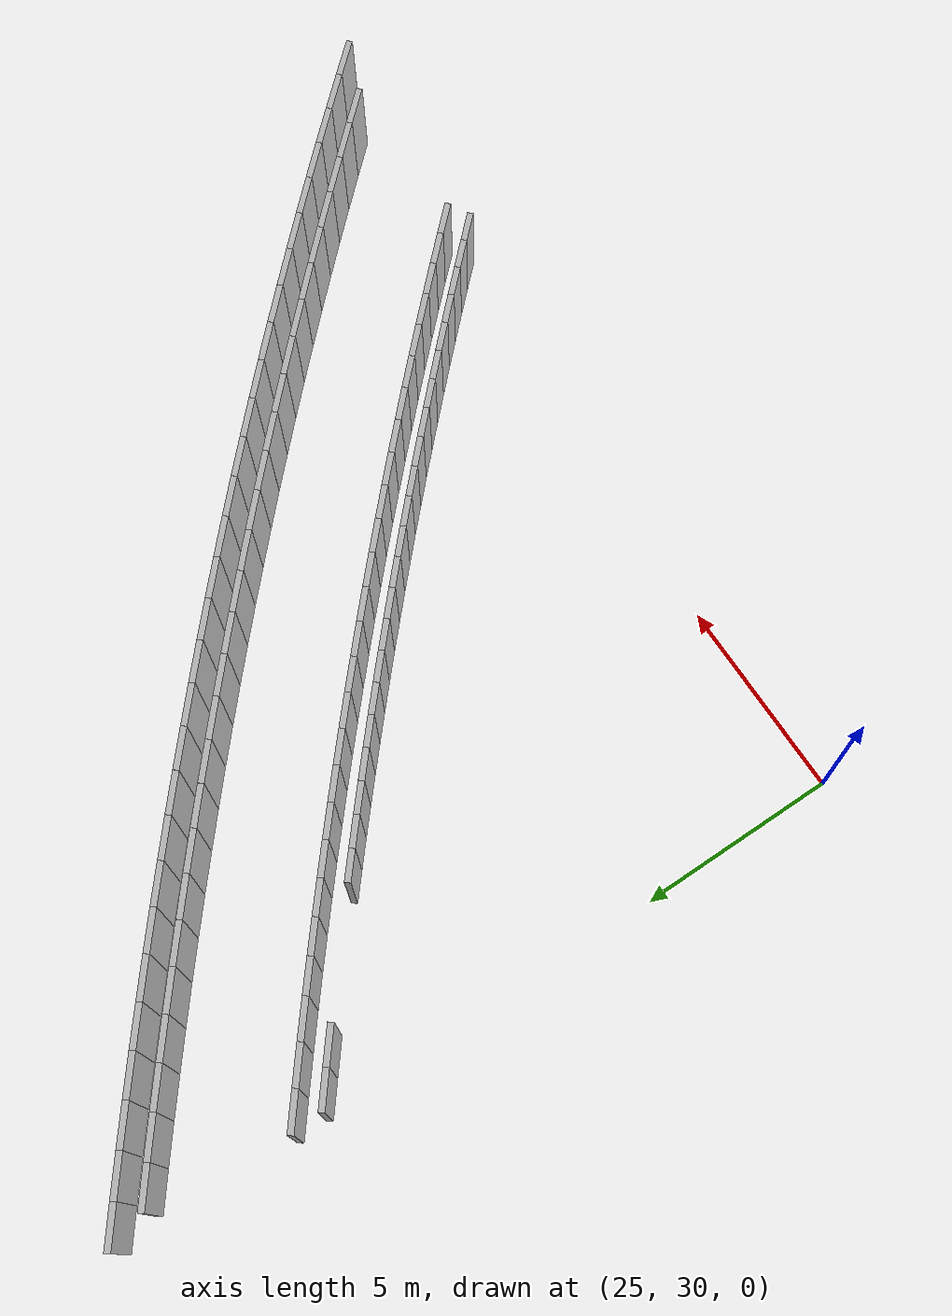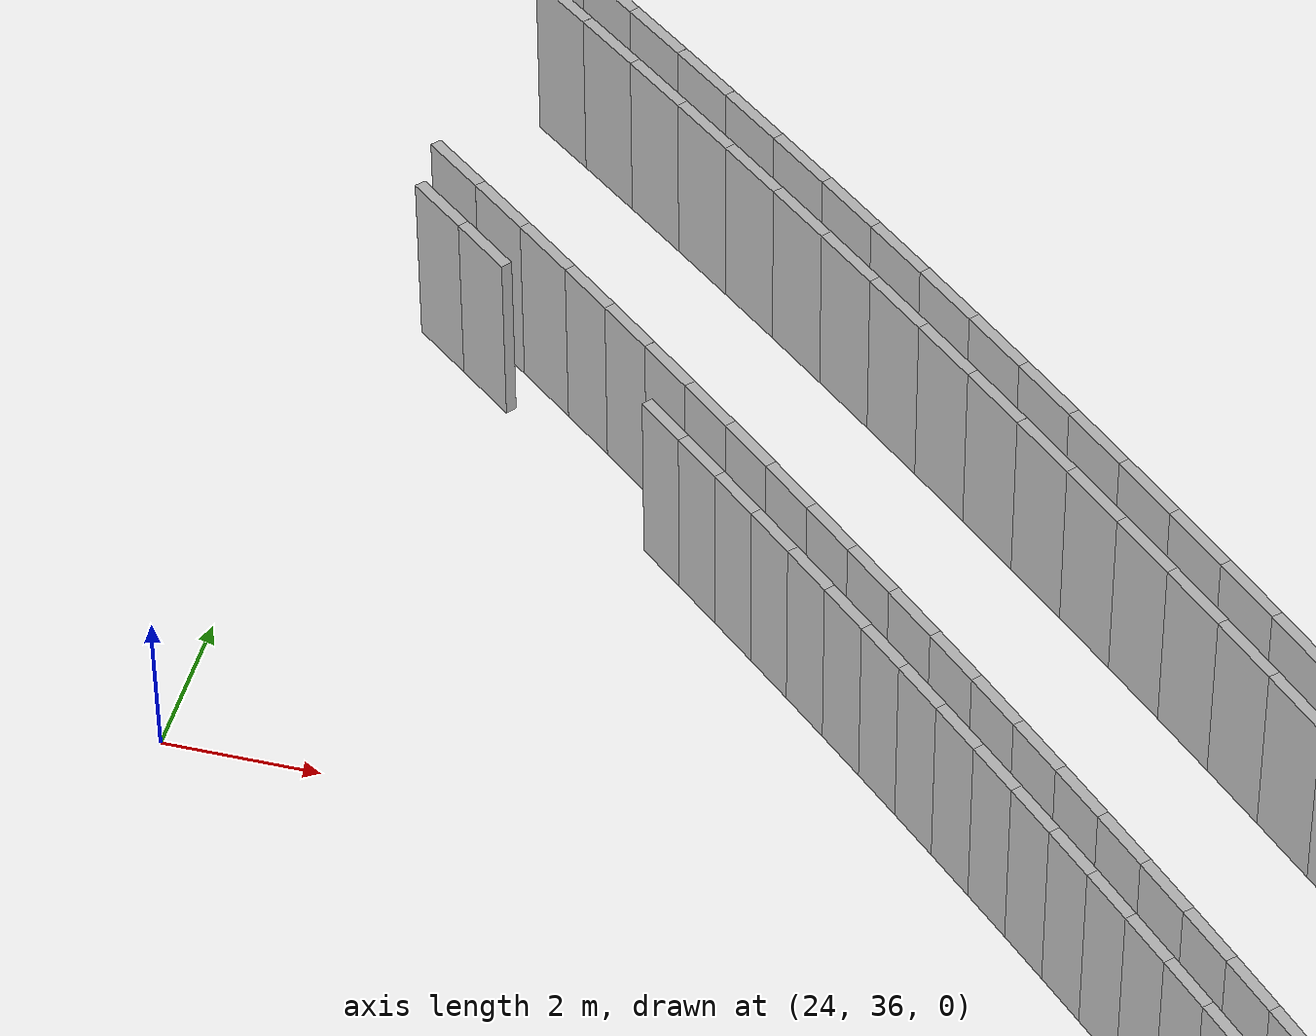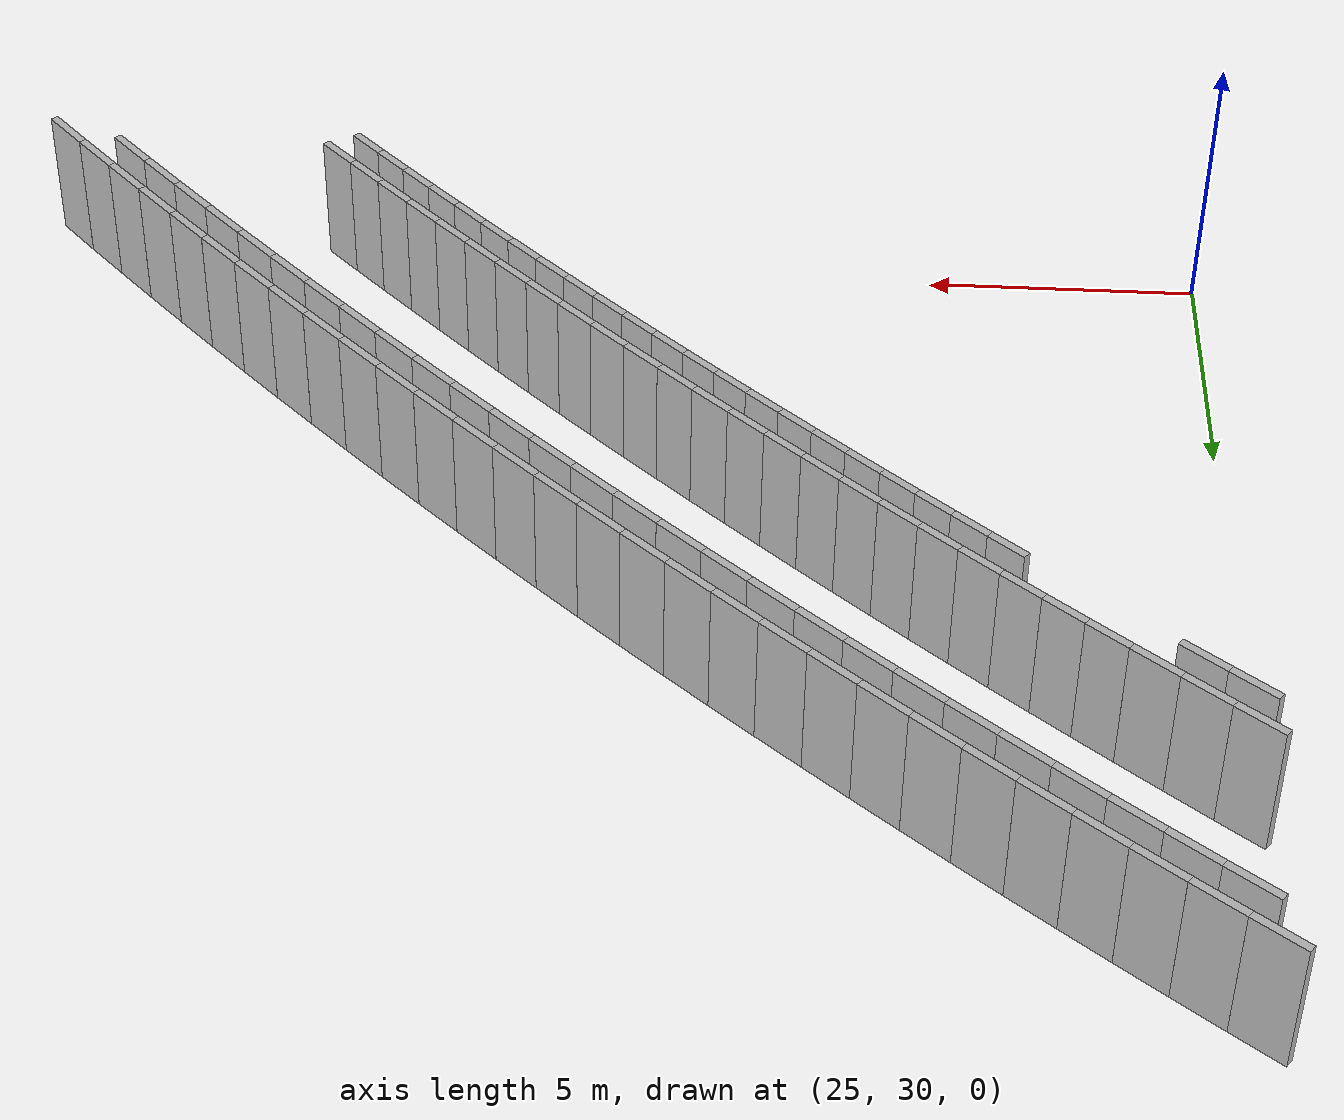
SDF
<sdf version="1.6">
 <model name="sps_0605">
  <static>1</static>
  <allow_auto_disable>0</allow_auto_disable>
  <link name="Wall7094">
   <collision name="collision"><geometry><box><size>1.02017 0.15 2.5</size></box></geometry></collision>
   <visual name="visual">
    <geometry><box><size>1.02017 0.15 2.5</size></box></geometry>
    <transparency>0.0</transparency>
   </visual>
   <pose>46.5691 29.3416 1.25 0 -0 2.31417</pose>
  </link>
  <link name="Wall7095">
   <collision name="collision"><geometry><box><size>1.02013 0.15 2.5</size></box></geometry></collision>
   <visual name="visual">
    <geometry><box><size>1.02013 0.15 2.5</size></box></geometry>
    <transparency>0.0</transparency>
   </visual>
   <pose>45.8762 30.0904 1.25 0 -0 2.32056</pose>
  </link>
  <link name="Wall7096">
   <collision name="collision"><geometry><box><size>1.02019 0.15 2.5</size></box></geometry></collision>
   <visual name="visual">
    <geometry><box><size>1.02019 0.15 2.5</size></box></geometry>
    <transparency>0.0</transparency>
   </visual>
   <pose>45.1788 30.8349 1.25 0 -0 2.32666</pose>
  </link>
  <link name="Wall7097">
   <collision name="collision"><geometry><box><size>1.0201 0.15 2.5</size></box></geometry></collision>
   <visual name="visual">
    <geometry><box><size>1.0201 0.15 2.5</size></box></geometry>
    <transparency>0.0</transparency>
   </visual>
   <pose>44.4766 31.5749 1.25 0 -0 2.33335</pose>
  </link>
  <link name="Wall7098">
   <collision name="collision"><geometry><box><size>1.02006 0.15 2.5</size></box></geometry></collision>
   <visual name="visual">
    <geometry><box><size>1.02006 0.15 2.5</size></box></geometry>
    <transparency>0.0</transparency>
   </visual>
   <pose>43.7697 32.3104 1.25 0 -0 2.33927</pose>
  </link>
  <link name="Wall7099">
   <collision name="collision"><geometry><box><size>1.02015 0.15 2.5</size></box></geometry></collision>
   <visual name="visual">
    <geometry><box><size>1.02015 0.15 2.5</size></box></geometry>
    <transparency>0.0</transparency>
   </visual>
   <pose>43.0583 33.0415 1.25 0 -0 2.34579</pose>
  </link>
  <link name="Wall7100">
   <collision name="collision"><geometry><box><size>1.02006 0.15 2.5</size></box></geometry></collision>
   <visual name="visual">
    <geometry><box><size>1.02006 0.15 2.5</size></box></geometry>
    <transparency>0.0</transparency>
   </visual>
   <pose>42.3422 33.768 1.25 0 -0 2.35218</pose>
  </link>
  <link name="Wall7101">
   <collision name="collision"><geometry><box><size>1.02005 0.15 2.5</size></box></geometry></collision>
   <visual name="visual">
    <geometry><box><size>1.02005 0.15 2.5</size></box></geometry>
    <transparency>0.0</transparency>
   </visual>
   <pose>41.6217 34.49 1.25 0 -0 2.35827</pose>
  </link>
  <link name="Wall7102">
   <collision name="collision"><geometry><box><size>1.02013 0.15 2.5</size></box></geometry></collision>
   <visual name="visual">
    <geometry><box><size>1.02013 0.15 2.5</size></box></geometry>
    <transparency>0.0</transparency>
   </visual>
   <pose>40.8966 35.2075 1.25 0 -0 2.36466</pose>
  </link>
  <link name="Wall7103">
   <collision name="collision"><geometry><box><size>1.0202 0.15 2.5</size></box></geometry></collision>
   <visual name="visual">
    <geometry><box><size>1.0202 0.15 2.5</size></box></geometry>
    <transparency>0.0</transparency>
   </visual>
   <pose>40.1669 35.9204 1.25 0 -0 2.371</pose>
  </link>
  <link name="Wall7104">
   <collision name="collision"><geometry><box><size>1.02015 0.15 2.5</size></box></geometry></collision>
   <visual name="visual">
    <geometry><box><size>1.02015 0.15 2.5</size></box></geometry>
    <transparency>0.0</transparency>
   </visual>
   <pose>39.4327 36.6287 1.25 0 -0 2.37726</pose>
  </link>
  <link name="Wall7105">
   <collision name="collision"><geometry><box><size>1.02005 0.15 2.5</size></box></geometry></collision>
   <visual name="visual">
    <geometry><box><size>1.02005 0.15 2.5</size></box></geometry>
    <transparency>0.0</transparency>
   </visual>
   <pose>38.6941 37.3323 1.25 0 -0 2.3837</pose>
  </link>
  <link name="Wall7106">
   <collision name="collision"><geometry><box><size>1.0202 0.15 2.5</size></box></geometry></collision>
   <visual name="visual">
    <geometry><box><size>1.0202 0.15 2.5</size></box></geometry>
    <transparency>0.0</transparency>
   </visual>
   <pose>37.9509 38.0312 1.25 0 -0 2.39</pose>
  </link>
  <link name="Wall7107">
   <collision name="collision"><geometry><box><size>1.02009 0.15 2.5</size></box></geometry></collision>
   <visual name="visual">
    <geometry><box><size>1.02009 0.15 2.5</size></box></geometry>
    <transparency>0.0</transparency>
   </visual>
   <pose>37.2035 38.7254 1.25 0 -0 2.39627</pose>
  </link>
  <link name="Wall7108">
   <collision name="collision"><geometry><box><size>1.02015 0.15 2.5</size></box></geometry></collision>
   <visual name="visual">
    <geometry><box><size>1.02015 0.15 2.5</size></box></geometry>
    <transparency>0.0</transparency>
   </visual>
   <pose>36.4517 39.4149 1.25 0 -0 2.40249</pose>
  </link>
  <link name="Wall7109">
   <collision name="collision"><geometry><box><size>1.01996 0.15 2.5</size></box></geometry></collision>
   <visual name="visual">
    <geometry><box><size>1.01996 0.15 2.5</size></box></geometry>
    <transparency>0.0</transparency>
   </visual>
   <pose>35.6955 40.0996 1.25 0 -0 2.40894</pose>
  </link>
  <link name="Wall7110">
   <collision name="collision"><geometry><box><size>1.02027 0.15 2.5</size></box></geometry></collision>
   <visual name="visual">
    <geometry><box><size>1.02027 0.15 2.5</size></box></geometry>
    <transparency>0.0</transparency>
   </visual>
   <pose>34.9351 40.7795 1.25 0 -0 2.41524</pose>
  </link>
  <link name="Wall7111">
   <collision name="collision"><geometry><box><size>1.02003 0.15 2.5</size></box></geometry></collision>
   <visual name="visual">
    <geometry><box><size>1.02003 0.15 2.5</size></box></geometry>
    <transparency>0.0</transparency>
   </visual>
   <pose>34.1702 41.4546 1.25 0 -0 2.42157</pose>
  </link>
  <link name="Wall7112">
   <collision name="collision"><geometry><box><size>1.02024 0.15 2.5</size></box></geometry></collision>
   <visual name="visual">
    <geometry><box><size>1.02024 0.15 2.5</size></box></geometry>
    <transparency>0.0</transparency>
   </visual>
   <pose>33.4012 42.1249 1.25 0 -0 2.42779</pose>
  </link>
  <link name="Wall7113">
   <collision name="collision"><geometry><box><size>1.01995 0.15 2.5</size></box></geometry></collision>
   <visual name="visual">
    <geometry><box><size>1.01995 0.15 2.5</size></box></geometry>
    <transparency>0.0</transparency>
   </visual>
   <pose>32.628 42.7903 1.25 0 -0 2.43417</pose>
  </link>
  <link name="Wall7114">
   <collision name="collision"><geometry><box><size>1.02014 0.15 2.5</size></box></geometry></collision>
   <visual name="visual">
    <geometry><box><size>1.02014 0.15 2.5</size></box></geometry>
    <transparency>0.0</transparency>
   </visual>
   <pose>31.8506 43.4507 1.25 0 -0 2.44061</pose>
  </link>
  <link name="Wall7115">
   <collision name="collision"><geometry><box><size>1.01998 0.15 2.5</size></box></geometry></collision>
   <visual name="visual">
    <geometry><box><size>1.01998 0.15 2.5</size></box></geometry>
    <transparency>0.0</transparency>
   </visual>
   <pose>31.0691 44.1063 1.25 0 -0 2.44657</pose>
  </link>
  <link name="Wall7116">
   <collision name="collision"><geometry><box><size>1.02017 0.15 2.5</size></box></geometry></collision>
   <visual name="visual">
    <geometry><box><size>1.02017 0.15 2.5</size></box></geometry>
    <transparency>0.0</transparency>
   </visual>
   <pose>30.2836 44.757 1.25 0 -0 2.4531</pose>
  </link>
  <link name="Wall7117">
   <collision name="collision"><geometry><box><size>1.02001 0.15 2.5</size></box></geometry></collision>
   <visual name="visual">
    <geometry><box><size>1.02001 0.15 2.5</size></box></geometry>
    <transparency>0.0</transparency>
   </visual>
   <pose>29.4938 45.4026 1.25 0 -0 2.45953</pose>
  </link>
  <link name="Wall7118">
   <collision name="collision"><geometry><box><size>1.0203 0.15 2.5</size></box></geometry></collision>
   <visual name="visual">
    <geometry><box><size>1.0203 0.15 2.5</size></box></geometry>
    <transparency>0.0</transparency>
   </visual>
   <pose>28.6999 46.0432 1.25 0 -0 2.46576</pose>
  </link>
  <link name="Wall7119">
   <collision name="collision"><geometry><box><size>1.0201 0.15 2.5</size></box></geometry></collision>
   <visual name="visual">
    <geometry><box><size>1.0201 0.15 2.5</size></box></geometry>
    <transparency>0.0</transparency>
   </visual>
   <pose>27.9019 46.6789 1.25 0 -0 2.47195</pose>
  </link>
  <link name="Wall7120">
   <collision name="collision"><geometry><box><size>1.02012 0.15 2.5</size></box></geometry></collision>
   <visual name="visual">
    <geometry><box><size>1.02012 0.15 2.5</size></box></geometry>
    <transparency>0.0</transparency>
   </visual>
   <pose>27.1002 47.3096 1.25 0 -0 2.47821</pose>
  </link>
  <link name="Wall7121">
   <collision name="collision"><geometry><box><size>1.02001 0.15 2.5</size></box></geometry></collision>
   <visual name="visual">
    <geometry><box><size>1.02001 0.15 2.5</size></box></geometry>
    <transparency>0.0</transparency>
   </visual>
   <pose>26.2944 47.9351 1.25 0 -0 2.4848</pose>
  </link>
  <link name="Wall7122">
   <collision name="collision"><geometry><box><size>1.02031 0.15 2.5</size></box></geometry></collision>
   <visual name="visual">
    <geometry><box><size>1.02031 0.15 2.5</size></box></geometry>
    <transparency>0.0</transparency>
   </visual>
   <pose>25.4845 48.5555 1.25 0 -0 2.4909</pose>
  </link>
  <link name="Wall13043">
   <collision name="collision"><geometry><box><size>1.01278 0.15 2.5</size></box></geometry></collision>
   <visual name="visual">
    <geometry><box><size>1.01278 0.15 2.5</size></box></geometry>
    <transparency>0.0</transparency>
   </visual>
   <pose>45.2385 29.8969 1.25 0 -0 2.32222</pose>
  </link>
  <link name="Wall13044">
   <collision name="collision"><geometry><box><size>1.01279 0.15 2.5</size></box></geometry></collision>
   <visual name="visual">
    <geometry><box><size>1.01279 0.15 2.5</size></box></geometry>
    <transparency>0.0</transparency>
   </visual>
   <pose>44.5448 30.6347 1.25 0 -0 2.32866</pose>
  </link>
  <link name="Wall13045">
   <collision name="collision"><geometry><box><size>1.01281 0.15 2.5</size></box></geometry></collision>
   <visual name="visual">
    <geometry><box><size>1.01281 0.15 2.5</size></box></geometry>
    <transparency>0.0</transparency>
   </visual>
   <pose>43.8463 31.3681 1.25 0 -0 2.33497</pose>
  </link>
  <link name="Wall13046">
   <collision name="collision"><geometry><box><size>1.01265 0.15 2.5</size></box></geometry></collision>
   <visual name="visual">
    <geometry><box><size>1.01265 0.15 2.5</size></box></geometry>
    <transparency>0.0</transparency>
   </visual>
   <pose>43.1433 32.0971 1.25 0 -0 2.34115</pose>
  </link>
  <link name="Wall13047">
   <collision name="collision"><geometry><box><size>1.01279 0.15 2.5</size></box></geometry></collision>
   <visual name="visual">
    <geometry><box><size>1.01279 0.15 2.5</size></box></geometry>
    <transparency>0.0</transparency>
   </visual>
   <pose>42.4358 32.8217 1.25 0 -0 2.34742</pose>
  </link>
  <link name="Wall13048">
   <collision name="collision"><geometry><box><size>1.01271 0.15 2.5</size></box></geometry></collision>
   <visual name="visual">
    <geometry><box><size>1.01271 0.15 2.5</size></box></geometry>
    <transparency>0.0</transparency>
   </visual>
   <pose>41.7237 33.5418 1.25 0 -0 2.35377</pose>
  </link>
  <link name="Wall13049">
   <collision name="collision"><geometry><box><size>1.01272 0.15 2.5</size></box></geometry></collision>
   <visual name="visual">
    <geometry><box><size>1.01272 0.15 2.5</size></box></geometry>
    <transparency>0.0</transparency>
   </visual>
   <pose>41.0071 34.2574 1.25 0 -0 2.35999</pose>
  </link>
  <link name="Wall13050">
   <collision name="collision"><geometry><box><size>1.01276 0.15 2.5</size></box></geometry></collision>
   <visual name="visual">
    <geometry><box><size>1.01276 0.15 2.5</size></box></geometry>
    <transparency>0.0</transparency>
   </visual>
   <pose>40.286 34.9685 1.25 0 -0 2.36638</pose>
  </link>
  <link name="Wall13051">
   <collision name="collision"><geometry><box><size>1.01276 0.15 2.5</size></box></geometry></collision>
   <visual name="visual">
    <geometry><box><size>1.01276 0.15 2.5</size></box></geometry>
    <transparency>0.0</transparency>
   </visual>
   <pose>39.5604 35.675 1.25 0 -0 2.37269</pose>
  </link>
  <link name="Wall13052">
   <collision name="collision"><geometry><box><size>1.01254 0.15 2.5</size></box></geometry></collision>
   <visual name="visual">
    <geometry><box><size>1.01254 0.15 2.5</size></box></geometry>
    <transparency>0.0</transparency>
   </visual>
   <pose>38.8304 36.3769 1.25 0 -0 2.37883</pose>
  </link>
  <link name="Wall13053">
   <collision name="collision"><geometry><box><size>1.01284 0.15 2.5</size></box></geometry></collision>
   <visual name="visual">
    <geometry><box><size>1.01284 0.15 2.5</size></box></geometry>
    <transparency>0.0</transparency>
   </visual>
   <pose>38.0961 37.0742 1.25 0 -0 2.38534</pose>
  </link>
  <link name="Wall13054">
   <collision name="collision"><geometry><box><size>1.01265 0.15 2.5</size></box></geometry></collision>
   <visual name="visual">
    <geometry><box><size>1.01265 0.15 2.5</size></box></geometry>
    <transparency>0.0</transparency>
   </visual>
   <pose>37.3573 37.7669 1.25 0 -0 2.39145</pose>
  </link>
  <link name="Wall13055">
   <collision name="collision"><geometry><box><size>1.01285 0.15 2.5</size></box></geometry></collision>
   <visual name="visual">
    <geometry><box><size>1.01285 0.15 2.5</size></box></geometry>
    <transparency>0.0</transparency>
   </visual>
   <pose>36.6142 38.455 1.25 0 -0 2.39779</pose>
  </link>
  <link name="Wall13056">
   <collision name="collision"><geometry><box><size>1.01279 0.15 2.5</size></box></geometry></collision>
   <visual name="visual">
    <geometry><box><size>1.01279 0.15 2.5</size></box></geometry>
    <transparency>0.0</transparency>
   </visual>
   <pose>35.8667 39.1384 1.25 0 -0 2.40411</pose>
  </link>
  <link name="Wall13057">
   <collision name="collision"><geometry><box><size>1.01264 0.15 2.5</size></box></geometry></collision>
   <visual name="visual">
    <geometry><box><size>1.01264 0.15 2.5</size></box></geometry>
    <transparency>0.0</transparency>
   </visual>
   <pose>35.115 39.817 1.25 0 -0 2.41039</pose>
  </link>
  <link name="Wall13058">
   <collision name="collision"><geometry><box><size>1.01284 0.15 2.5</size></box></geometry></collision>
   <visual name="visual">
    <geometry><box><size>1.01284 0.15 2.5</size></box></geometry>
    <transparency>0.0</transparency>
   </visual>
   <pose>34.359 40.4909 1.25 0 -0 2.4167</pose>
  </link>
  <link name="Wall13059">
   <collision name="collision"><geometry><box><size>1.0126 0.15 2.5</size></box></geometry></collision>
   <visual name="visual">
    <geometry><box><size>1.0126 0.15 2.5</size></box></geometry>
    <transparency>0.0</transparency>
   </visual>
   <pose>33.5988 41.16 1.25 0 -0 2.42299</pose>
  </link>
  <link name="Wall13060">
   <collision name="collision"><geometry><box><size>1.01287 0.15 2.5</size></box></geometry></collision>
   <visual name="visual">
    <geometry><box><size>1.01287 0.15 2.5</size></box></geometry>
    <transparency>0.0</transparency>
   </visual>
   <pose>32.8344 41.8243 1.25 0 -0 2.42929</pose>
  </link>
  <link name="Wall13061">
   <collision name="collision"><geometry><box><size>1.01267 0.15 2.5</size></box></geometry></collision>
   <visual name="visual">
    <geometry><box><size>1.01267 0.15 2.5</size></box></geometry>
    <transparency>0.0</transparency>
   </visual>
   <pose>32.0658 42.4838 1.25 0 -0 2.43563</pose>
  </link>
  <link name="Wall13062">
   <collision name="collision"><geometry><box><size>1.01276 0.15 2.5</size></box></geometry></collision>
   <visual name="visual">
    <geometry><box><size>1.01276 0.15 2.5</size></box></geometry>
    <transparency>0.0</transparency>
   </visual>
   <pose>31.2931 43.1384 1.25 0 -0 2.44187</pose>
  </link>
  <link name="Wall13063">
   <collision name="collision"><geometry><box><size>1.01275 0.15 2.5</size></box></geometry></collision>
   <visual name="visual">
    <geometry><box><size>1.01275 0.15 2.5</size></box></geometry>
    <transparency>0.0</transparency>
   </visual>
   <pose>30.5163 43.7882 1.25 0 -0 2.44807</pose>
  </link>
  <link name="Wall13064">
   <collision name="collision"><geometry><box><size>1.01263 0.15 2.5</size></box></geometry></collision>
   <visual name="visual">
    <geometry><box><size>1.01263 0.15 2.5</size></box></geometry>
    <transparency>0.0</transparency>
   </visual>
   <pose>29.7355 44.4331 1.25 0 -0 2.45438</pose>
  </link>
  <link name="Wall13065">
   <collision name="collision"><geometry><box><size>1.01277 0.15 2.5</size></box></geometry></collision>
   <visual name="visual">
    <geometry><box><size>1.01277 0.15 2.5</size></box></geometry>
    <transparency>0.0</transparency>
   </visual>
   <pose>28.9506 45.073 1.25 0 -0 2.46088</pose>
  </link>
  <link name="Wall13066">
   <collision name="collision"><geometry><box><size>1.01272 0.15 2.5</size></box></geometry></collision>
   <visual name="visual">
    <geometry><box><size>1.01272 0.15 2.5</size></box></geometry>
    <transparency>0.0</transparency>
   </visual>
   <pose>28.1616 45.7079 1.25 0 -0 2.4671</pose>
  </link>
  <link name="Wall13067">
   <collision name="collision"><geometry><box><size>1.01269 0.15 2.5</size></box></geometry></collision>
   <visual name="visual">
    <geometry><box><size>1.01269 0.15 2.5</size></box></geometry>
    <transparency>0.0</transparency>
   </visual>
   <pose>27.3687 46.3379 1.25 0 -0 2.47323</pose>
  </link>
  <link name="Wall13068">
   <collision name="collision"><geometry><box><size>1.01281 0.15 2.5</size></box></geometry></collision>
   <visual name="visual">
    <geometry><box><size>1.01281 0.15 2.5</size></box></geometry>
    <transparency>0.0</transparency>
   </visual>
   <pose>26.5719 46.963 1.25 0 -0 2.47953</pose>
  </link>
  <link name="Wall13069">
   <collision name="collision"><geometry><box><size>1.01259 0.15 2.5</size></box></geometry></collision>
   <visual name="visual">
    <geometry><box><size>1.01259 0.15 2.5</size></box></geometry>
    <transparency>0.0</transparency>
   </visual>
   <pose>25.7711 47.583 1.25 0 -0 2.48592</pose>
  </link>
  <link name="Wall25099">
   <collision name="collision"><geometry><box><size>0.934298 0.15 2.5</size></box></geometry></collision>
   <visual name="visual">
    <geometry><box><size>0.934298 0.15 2.5</size></box></geometry>
    <transparency>0.0</transparency>
   </visual>
   <pose>26.0894 42.8561 1.25 0 -0 2.46589</pose>
  </link>
  <link name="Wall25100">
   <collision name="collision"><geometry><box><size>0.934271 0.15 2.5</size></box></geometry></collision>
   <visual name="visual">
    <geometry><box><size>0.934271 0.15 2.5</size></box></geometry>
    <transparency>0.0</transparency>
   </visual>
   <pose>25.3587 43.4383 1.25 0 -0 2.4718</pose>
  </link>
  <link name="Wall25126">
   <collision name="collision"><geometry><box><size>0.96415 0.15 2.5</size></box></geometry></collision>
   <visual name="visual">
    <geometry><box><size>0.96415 0.15 2.5</size></box></geometry>
    <transparency>0.0</transparency>
   </visual>
   <pose>26.8483 43.0154 1.25 0 -0 2.4628</pose>
  </link>
  <link name="Wall25127">
   <collision name="collision"><geometry><box><size>0.964087 0.15 2.5</size></box></geometry></collision>
   <visual name="visual">
    <geometry><box><size>0.964087 0.15 2.5</size></box></geometry>
    <transparency>0.0</transparency>
   </visual>
   <pose>26.0961 43.6185 1.25 0 -0 2.46875</pose>
  </link>
  <link name="Wall25128">
   <collision name="collision"><geometry><box><size>0.963965 0.15 2.5</size></box></geometry></collision>
   <visual name="visual">
    <geometry><box><size>0.963965 0.15 2.5</size></box></geometry>
    <transparency>0.0</transparency>
   </visual>
   <pose>25.3403 44.2169 1.25 0 -0 2.47503</pose>
  </link>
  <link name="Wall25208">
   <collision name="collision"><geometry><box><size>0.849182 0.15 2.5</size></box></geometry></collision>
   <visual name="visual">
    <geometry><box><size>0.849182 0.15 2.5</size></box></geometry>
    <transparency>0.0</transparency>
   </visual>
   <pose>41.2981 29.8029 1.25 0 -0 2.33886</pose>
  </link>
  <link name="Wall25209">
   <collision name="collision"><geometry><box><size>0.84946 0.15 2.5</size></box></geometry></collision>
   <visual name="visual">
    <geometry><box><size>0.84946 0.15 2.5</size></box></geometry>
    <transparency>0.0</transparency>
   </visual>
   <pose>40.7064 30.4122 1.25 0 -0 2.34425</pose>
  </link>
  <link name="Wall25210">
   <collision name="collision"><geometry><box><size>0.849246 0.15 2.5</size></box></geometry></collision>
   <visual name="visual">
    <geometry><box><size>0.849246 0.15 2.5</size></box></geometry>
    <transparency>0.0</transparency>
   </visual>
   <pose>40.1114 31.0183 1.25 0 -0 2.34964</pose>
  </link>
  <link name="Wall25211">
   <collision name="collision"><geometry><box><size>0.8494 0.15 2.5</size></box></geometry></collision>
   <visual name="visual">
    <geometry><box><size>0.8494 0.15 2.5</size></box></geometry>
    <transparency>0.0</transparency>
   </visual>
   <pose>39.5131 31.6211 1.25 0 -0 2.35523</pose>
  </link>
  <link name="Wall25212">
   <collision name="collision"><geometry><box><size>0.849192 0.15 2.5</size></box></geometry></collision>
   <visual name="visual">
    <geometry><box><size>0.849192 0.15 2.5</size></box></geometry>
    <transparency>0.0</transparency>
   </visual>
   <pose>38.9116 32.2207 1.25 0 -0 2.36036</pose>
  </link>
  <link name="Wall25213">
   <collision name="collision"><geometry><box><size>0.849439 0.15 2.5</size></box></geometry></collision>
   <visual name="visual">
    <geometry><box><size>0.849439 0.15 2.5</size></box></geometry>
    <transparency>0.0</transparency>
   </visual>
   <pose>38.3069 32.8171 1.25 0 -0 2.3658</pose>
  </link>
  <link name="Wall25214">
   <collision name="collision"><geometry><box><size>0.849321 0.15 2.5</size></box></geometry></collision>
   <visual name="visual">
    <geometry><box><size>0.849321 0.15 2.5</size></box></geometry>
    <transparency>0.0</transparency>
   </visual>
   <pose>37.699 33.4103 1.25 0 -0 2.37108</pose>
  </link>
  <link name="Wall25215">
   <collision name="collision"><geometry><box><size>0.849442 0.15 2.5</size></box></geometry></collision>
   <visual name="visual">
    <geometry><box><size>0.849442 0.15 2.5</size></box></geometry>
    <transparency>0.0</transparency>
   </visual>
   <pose>37.0879 34.0003 1.25 0 -0 2.37632</pose>
  </link>
  <link name="Wall25216">
   <collision name="collision"><geometry><box><size>0.849467 0.15 2.5</size></box></geometry></collision>
   <visual name="visual">
    <geometry><box><size>0.849467 0.15 2.5</size></box></geometry>
    <transparency>0.0</transparency>
   </visual>
   <pose>36.4737 34.587 1.25 0 -0 2.38201</pose>
  </link>
  <link name="Wall25217">
   <collision name="collision"><geometry><box><size>0.849247 0.15 2.5</size></box></geometry></collision>
   <visual name="visual">
    <geometry><box><size>0.849247 0.15 2.5</size></box></geometry>
    <transparency>0.0</transparency>
   </visual>
   <pose>35.8563 35.1703 1.25 0 -0 2.3872</pose>
  </link>
  <link name="Wall25218">
   <collision name="collision"><geometry><box><size>0.849407 0.15 2.5</size></box></geometry></collision>
   <visual name="visual">
    <geometry><box><size>0.849407 0.15 2.5</size></box></geometry>
    <transparency>0.0</transparency>
   </visual>
   <pose>35.2357 35.7502 1.25 0 -0 2.39279</pose>
  </link>
  <link name="Wall25219">
   <collision name="collision"><geometry><box><size>0.849231 0.15 2.5</size></box></geometry></collision>
   <visual name="visual">
    <geometry><box><size>0.849231 0.15 2.5</size></box></geometry>
    <transparency>0.0</transparency>
   </visual>
   <pose>34.6121 36.3268 1.25 0 -0 2.39788</pose>
  </link>
  <link name="Wall25220">
   <collision name="collision"><geometry><box><size>0.849488 0.15 2.5</size></box></geometry></collision>
   <visual name="visual">
    <geometry><box><size>0.849488 0.15 2.5</size></box></geometry>
    <transparency>0.0</transparency>
   </visual>
   <pose>33.9854 36.9001 1.25 0 -0 2.40351</pose>
  </link>
  <link name="Wall25221">
   <collision name="collision"><geometry><box><size>0.849149 0.15 2.5</size></box></geometry></collision>
   <visual name="visual">
    <geometry><box><size>0.849149 0.15 2.5</size></box></geometry>
    <transparency>0.0</transparency>
   </visual>
   <pose>33.3556 37.4699 1.25 0 -0 2.40877</pose>
  </link>
  <link name="Wall25222">
   <collision name="collision"><geometry><box><size>0.849524 0.15 2.5</size></box></geometry></collision>
   <visual name="visual">
    <geometry><box><size>0.849524 0.15 2.5</size></box></geometry>
    <transparency>0.0</transparency>
   </visual>
   <pose>32.7229 38.0364 1.25 0 -0 2.41399</pose>
  </link>
  <link name="Wall25223">
   <collision name="collision"><geometry><box><size>0.849335 0.15 2.5</size></box></geometry></collision>
   <visual name="visual">
    <geometry><box><size>0.849335 0.15 2.5</size></box></geometry>
    <transparency>0.0</transparency>
   </visual>
   <pose>32.087 38.5996 1.25 0 -0 2.41955</pose>
  </link>
  <link name="Wall25224">
   <collision name="collision"><geometry><box><size>0.849458 0.15 2.5</size></box></geometry></collision>
   <visual name="visual">
    <geometry><box><size>0.849458 0.15 2.5</size></box></geometry>
    <transparency>0.0</transparency>
   </visual>
   <pose>31.4481 39.1593 1.25 0 -0 2.42484</pose>
  </link>
  <link name="Wall25225">
   <collision name="collision"><geometry><box><size>0.849274 0.15 2.5</size></box></geometry></collision>
   <visual name="visual">
    <geometry><box><size>0.849274 0.15 2.5</size></box></geometry>
    <transparency>0.0</transparency>
   </visual>
   <pose>30.8061 39.7155 1.25 0 -0 2.43036</pose>
  </link>
  <link name="Wall25226">
   <collision name="collision"><geometry><box><size>0.849221 0.15 2.5</size></box></geometry></collision>
   <visual name="visual">
    <geometry><box><size>0.849221 0.15 2.5</size></box></geometry>
    <transparency>0.0</transparency>
   </visual>
   <pose>30.1614 40.2682 1.25 0 -0 2.43551</pose>
  </link>
  <link name="Wall25227">
   <collision name="collision"><geometry><box><size>0.849478 0.15 2.5</size></box></geometry></collision>
   <visual name="visual">
    <geometry><box><size>0.849478 0.15 2.5</size></box></geometry>
    <transparency>0.0</transparency>
   </visual>
   <pose>29.5136 40.8175 1.25 0 -0 2.44104</pose>
  </link>
  <link name="Wall25228">
   <collision name="collision"><geometry><box><size>0.849276 0.15 2.5</size></box></geometry></collision>
   <visual name="visual">
    <geometry><box><size>0.849276 0.15 2.5</size></box></geometry>
    <transparency>0.0</transparency>
   </visual>
   <pose>28.8628 41.3633 1.25 0 -0 2.44647</pose>
  </link>
  <link name="Wall25229">
   <collision name="collision"><geometry><box><size>0.849318 0.15 2.5</size></box></geometry></collision>
   <visual name="visual">
    <geometry><box><size>0.849318 0.15 2.5</size></box></geometry>
    <transparency>0.0</transparency>
   </visual>
   <pose>28.209 41.9055 1.25 0 -0 2.45192</pose>
  </link>
  <link name="Wall25230">
   <collision name="collision"><geometry><box><size>0.849312 0.15 2.5</size></box></geometry></collision>
   <visual name="visual">
    <geometry><box><size>0.849312 0.15 2.5</size></box></geometry>
    <transparency>0.0</transparency>
   </visual>
   <pose>27.5525 42.4442 1.25 0 -0 2.45703</pose>
  </link>
  <link name="Wall27811">
   <collision name="collision"><geometry><box><size>0.764354 0.15 2.5</size></box></geometry></collision>
   <visual name="visual">
    <geometry><box><size>0.764354 0.15 2.5</size></box></geometry>
    <transparency>0.0</transparency>
   </visual>
   <pose>40.79 29.4646 1.25 0 -0 2.33959</pose>
  </link>
  <link name="Wall27812">
   <collision name="collision"><geometry><box><size>0.764302 0.15 2.5</size></box></geometry></collision>
   <visual name="visual">
    <geometry><box><size>0.764302 0.15 2.5</size></box></geometry>
    <transparency>0.0</transparency>
   </visual>
   <pose>40.2573 30.0127 1.25 0 -0 2.34434</pose>
  </link>
  <link name="Wall27813">
   <collision name="collision"><geometry><box><size>0.764265 0.15 2.5</size></box></geometry></collision>
   <visual name="visual">
    <geometry><box><size>0.764265 0.15 2.5</size></box></geometry>
    <transparency>0.0</transparency>
   </visual>
   <pose>39.7219 30.5581 1.25 0 -0 2.34953</pose>
  </link>
  <link name="Wall27814">
   <collision name="collision"><geometry><box><size>0.76438 0.15 2.5</size></box></geometry></collision>
   <visual name="visual">
    <geometry><box><size>0.76438 0.15 2.5</size></box></geometry>
    <transparency>0.0</transparency>
   </visual>
   <pose>39.1838 31.1009 1.25 0 -0 2.35411</pose>
  </link>
  <link name="Wall27815">
   <collision name="collision"><geometry><box><size>0.764252 0.15 2.5</size></box></geometry></collision>
   <visual name="visual">
    <geometry><box><size>0.764252 0.15 2.5</size></box></geometry>
    <transparency>0.0</transparency>
   </visual>
   <pose>38.6431 31.6411 1.25 0 -0 2.35924</pose>
  </link>
  <link name="Wall27816">
   <collision name="collision"><geometry><box><size>0.764228 0.15 2.5</size></box></geometry></collision>
   <visual name="visual">
    <geometry><box><size>0.764228 0.15 2.5</size></box></geometry>
    <transparency>0.0</transparency>
   </visual>
   <pose>38.0998 32.1786 1.25 0 -0 2.36393</pose>
  </link>
  <link name="Wall27817">
   <collision name="collision"><geometry><box><size>0.764177 0.15 2.5</size></box></geometry></collision>
   <visual name="visual">
    <geometry><box><size>0.764177 0.15 2.5</size></box></geometry>
    <transparency>0.0</transparency>
   </visual>
   <pose>37.554 32.7135 1.25 0 -0 2.36856</pose>
  </link>
  <link name="Wall27818">
   <collision name="collision"><geometry><box><size>0.764364 0.15 2.5</size></box></geometry></collision>
   <visual name="visual">
    <geometry><box><size>0.764364 0.15 2.5</size></box></geometry>
    <transparency>0.0</transparency>
   </visual>
   <pose>37.0056 33.2458 1.25 0 -0 2.37359</pose>
  </link>
  <link name="Wall27819">
   <collision name="collision"><geometry><box><size>0.764305 0.15 2.5</size></box></geometry></collision>
   <visual name="visual">
    <geometry><box><size>0.764305 0.15 2.5</size></box></geometry>
    <transparency>0.0</transparency>
   </visual>
   <pose>36.4546 33.7755 1.25 0 -0 2.37828</pose>
  </link>
  <link name="Wall27820">
   <collision name="collision"><geometry><box><size>0.764401 0.15 2.5</size></box></geometry></collision>
   <visual name="visual">
    <geometry><box><size>0.764401 0.15 2.5</size></box></geometry>
    <transparency>0.0</transparency>
   </visual>
   <pose>35.9009 34.3025 1.25 0 -0 2.38336</pose>
  </link>
  <link name="Wall27821">
   <collision name="collision"><geometry><box><size>0.764166 0.15 2.5</size></box></geometry></collision>
   <visual name="visual">
    <geometry><box><size>0.764166 0.15 2.5</size></box></geometry>
    <transparency>0.0</transparency>
   </visual>
   <pose>35.3447 34.8267 1.25 0 -0 2.38822</pose>
  </link>
  <link name="Wall27822">
   <collision name="collision"><geometry><box><size>0.764201 0.15 2.5</size></box></geometry></collision>
   <visual name="visual">
    <geometry><box><size>0.764201 0.15 2.5</size></box></geometry>
    <transparency>0.0</transparency>
   </visual>
   <pose>34.7862 35.3482 1.25 0 -0 2.39286</pose>
  </link>
  <link name="Wall27823">
   <collision name="collision"><geometry><box><size>0.764357 0.15 2.5</size></box></geometry></collision>
   <visual name="visual">
    <geometry><box><size>0.764357 0.15 2.5</size></box></geometry>
    <transparency>0.0</transparency>
   </visual>
   <pose>34.2249 35.867 1.25 0 -0 2.39805</pose>
  </link>
  <link name="Wall27824">
   <collision name="collision"><geometry><box><size>0.764172 0.15 2.5</size></box></geometry></collision>
   <visual name="visual">
    <geometry><box><size>0.764172 0.15 2.5</size></box></geometry>
    <transparency>0.0</transparency>
   </visual>
   <pose>33.6612 36.383 1.25 0 -0 2.40281</pose>
  </link>
  <link name="Wall27825">
   <collision name="collision"><geometry><box><size>0.764304 0.15 2.5</size></box></geometry></collision>
   <visual name="visual">
    <geometry><box><size>0.764304 0.15 2.5</size></box></geometry>
    <transparency>0.0</transparency>
   </visual>
   <pose>33.095 36.8963 1.25 0 -0 2.40749</pose>
  </link>
  <link name="Wall27826">
   <collision name="collision"><geometry><box><size>0.764154 0.15 2.5</size></box></geometry></collision>
   <visual name="visual">
    <geometry><box><size>0.764154 0.15 2.5</size></box></geometry>
    <transparency>0.0</transparency>
   </visual>
   <pose>32.5264 37.4069 1.25 0 -0 2.41225</pose>
  </link>
  <link name="Wall27827">
   <collision name="collision"><geometry><box><size>0.764295 0.15 2.5</size></box></geometry></collision>
   <visual name="visual">
    <geometry><box><size>0.764295 0.15 2.5</size></box></geometry>
    <transparency>0.0</transparency>
   </visual>
   <pose>31.9553 37.9147 1.25 0 -0 2.41733</pose>
  </link>
  <link name="Wall27828">
   <collision name="collision"><geometry><box><size>0.764439 0.15 2.5</size></box></geometry></collision>
   <visual name="visual">
    <geometry><box><size>0.764439 0.15 2.5</size></box></geometry>
    <transparency>0.0</transparency>
   </visual>
   <pose>31.3816 38.4198 1.25 0 -0 2.42207</pose>
  </link>
  <link name="Wall27829">
   <collision name="collision"><geometry><box><size>0.764296 0.15 2.5</size></box></geometry></collision>
   <visual name="visual">
    <geometry><box><size>0.764296 0.15 2.5</size></box></geometry>
    <transparency>0.0</transparency>
   </visual>
   <pose>30.8055 38.9222 1.25 0 -0 2.42678</pose>
  </link>
  <link name="Wall27830">
   <collision name="collision"><geometry><box><size>0.764143 0.15 2.5</size></box></geometry></collision>
   <visual name="visual">
    <geometry><box><size>0.764143 0.15 2.5</size></box></geometry>
    <transparency>0.0</transparency>
   </visual>
   <pose>30.2271 39.4217 1.25 0 -0 2.43178</pose>
  </link>
  <link name="Wall27831">
   <collision name="collision"><geometry><box><size>0.764195 0.15 2.5</size></box></geometry></collision>
   <visual name="visual">
    <geometry><box><size>0.764195 0.15 2.5</size></box></geometry>
    <transparency>0.0</transparency>
   </visual>
   <pose>29.6462 39.9182 1.25 0 -0 2.43699</pose>
  </link>
  <link name="Wall27832">
   <collision name="collision"><geometry><box><size>0.764216 0.15 2.5</size></box></geometry></collision>
   <visual name="visual">
    <geometry><box><size>0.764216 0.15 2.5</size></box></geometry>
    <transparency>0.0</transparency>
   </visual>
   <pose>29.0629 40.4119 1.25 0 -0 2.4414</pose>
  </link>
 </model>
</sdf>
